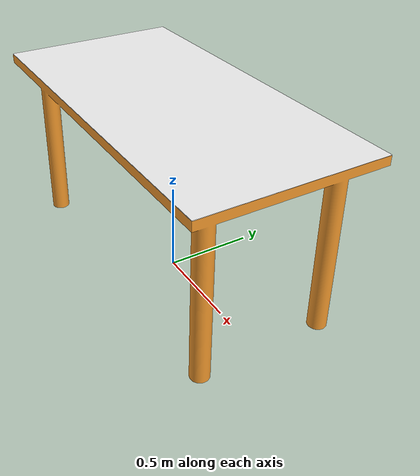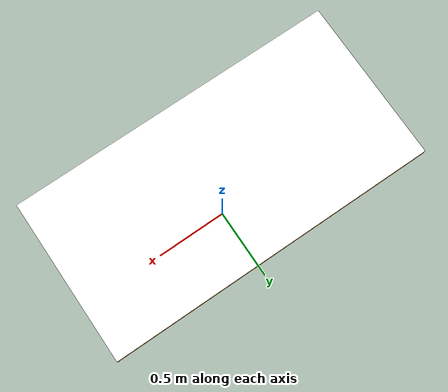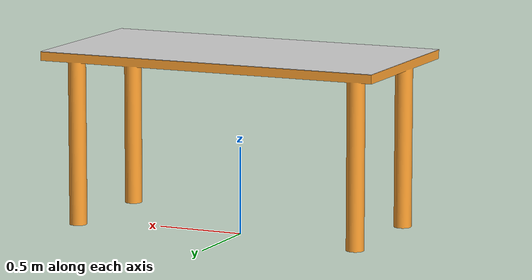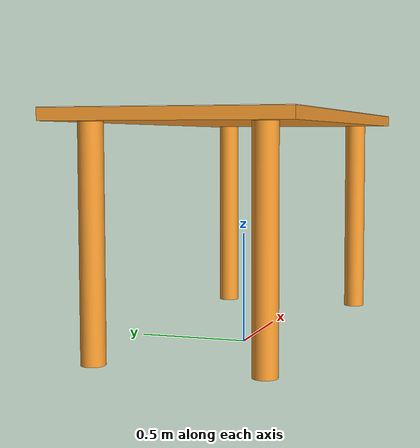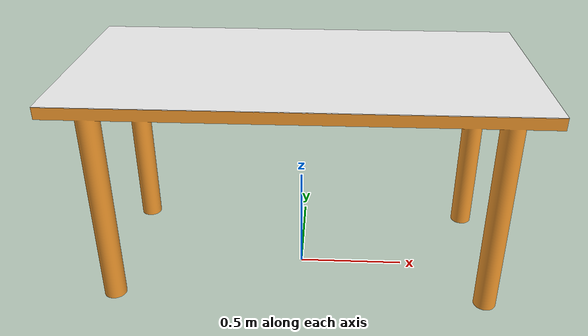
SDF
<?xml version="1.0" ?>
<sdf version="1.9">
  <model name="work_table">
    <static>true</static>
    <link name="link">
      <visual name="visual">
        <pose>0 0 1.0 0 0 0</pose>
        <geometry>
          <mesh>
            <uri>model://floor/meshes/mesa.stl</uri>
          </mesh>
        </geometry>
        <material>
          <ambient>0.909804 0.572549 0.164706 1</ambient>
          <diffuse>0.909804 0.572549 0.164706 1</diffuse>
        </material>
      </visual>
      <visual name="wood_top_visual">
        <pose>0 0 1.051 0 0 0</pose>
        <geometry>
          <box>
            <size>2.0 1.0 0.003</size>
          </box>
        </geometry>
        <material>
          <diffuse>1 1 1 1</diffuse>
          <specular>0.08 0.08 0.08 1</specular>
          <pbr>
            <metal>
              <albedo_map>model://work_table/materials/textures/wood_table_001_diff_1k.jpg</albedo_map>
              <metalness>0.0</metalness>
              <roughness>0.65</roughness>
            </metal>
          </pbr>
        </material>
      </visual>
      <collision name="collision">
        <pose>0 0 1.0 0 0 0</pose>
        <geometry>
          <mesh>
            <uri>model://floor/meshes/mesa.stl</uri>
          </mesh>
        </geometry>
      </collision>
    </link>
  </model>
</sdf>
